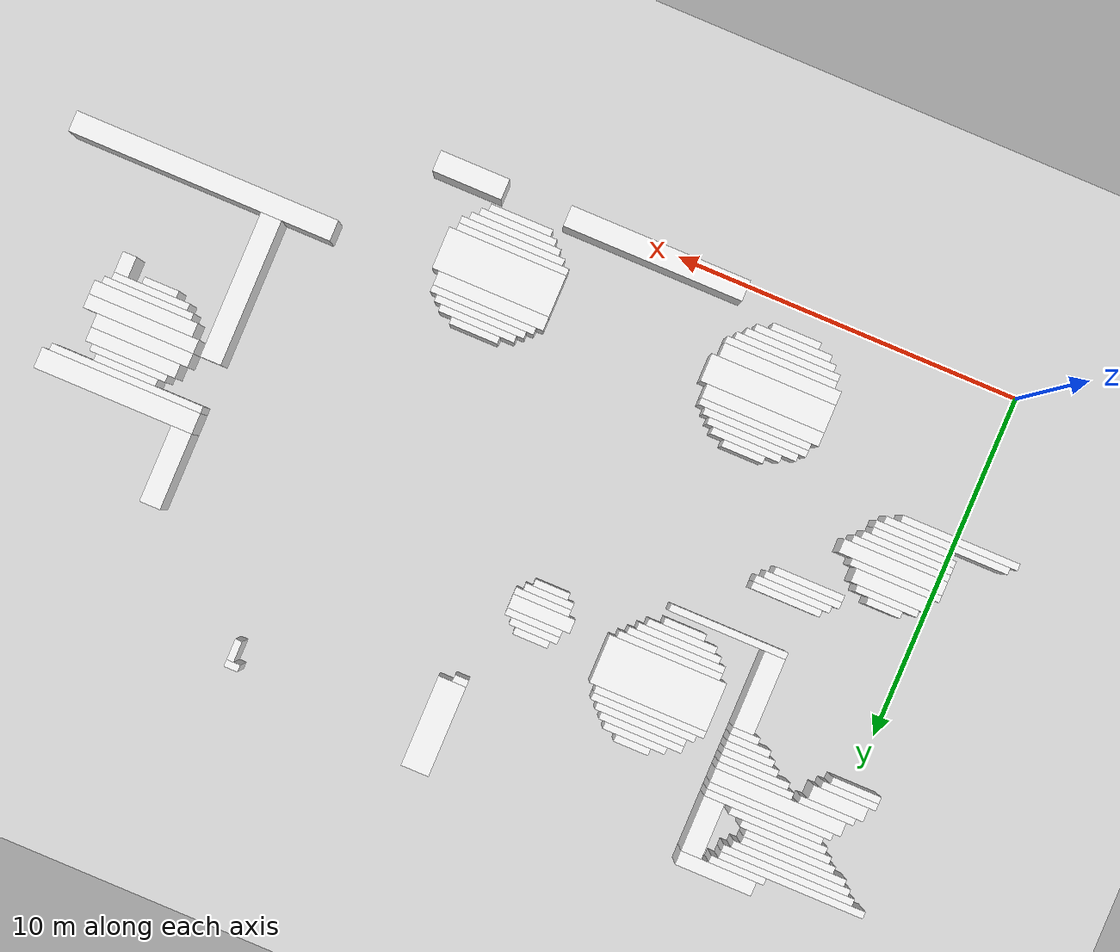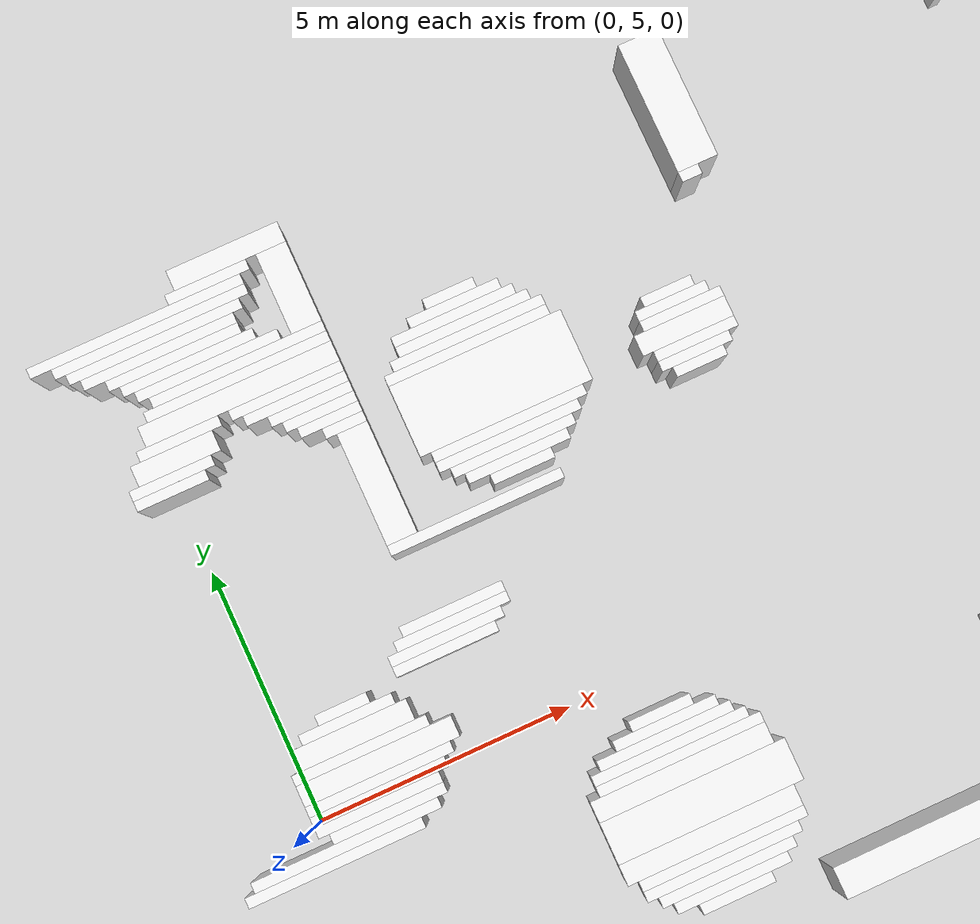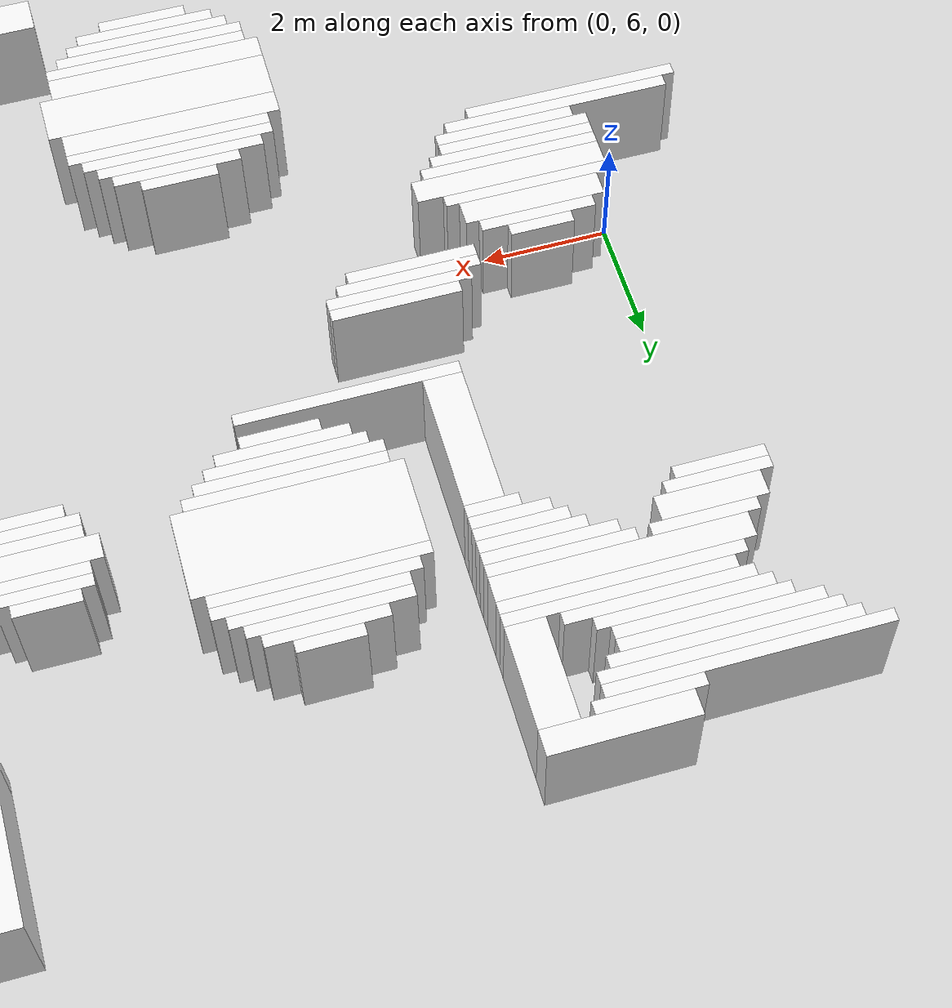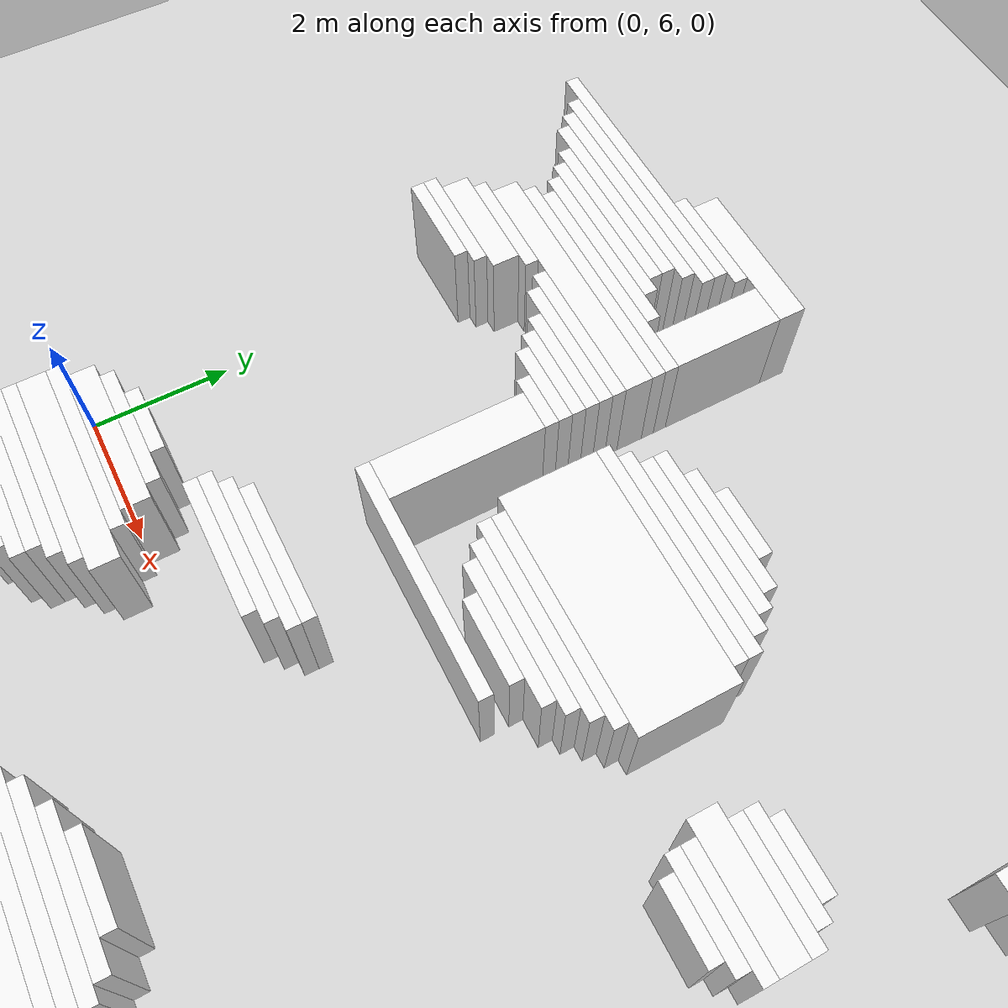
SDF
<sdf version="1.7">
 <world name="default">
  <model name="ground_plane">
   <static>1</static>
   <link name="link">
    <collision name="collision">
     <geometry><plane><normal>0 0 1</normal><size>120 120</size></plane></geometry>
    </collision>
    <visual name="visual">
     <geometry><plane><normal>0 0 1</normal><size>120 120</size></plane></geometry>
     <material>
      <script><uri>file://media/materials/scripts/gazebo.material</uri><name>Gazebo/Grey</name></script>
     </material>
    </visual>
   </link>
  </model>
  <model name="random_complex_01_model">
   <static>1</static>
   <link name="obs_1184">
    <pose>2.7000 15.0000 0.8000 0 0 0</pose>
    <collision name="obs_1184_col"><geometry><box><size>2.2000 0.4000 1.6000</size></box></geometry></collision>
    <visual name="obs_1184_vis">
     <geometry><box><size>2.2000 0.4000 1.6000</size></box></geometry>
     <material>
      <script><uri>file://media/materials/scripts/gazebo.material</uri><name>Gazebo/White</name></script>
     </material>
    </visual>
   </link>
   <link name="obs_1188">
    <pose>16.8000 14.9000 0.8000 0 0 0</pose>
    <collision name="obs_1188_col"><geometry><box><size>0.4000 0.2000 1.6000</size></box></geometry></collision>
    <visual name="obs_1188_vis">
     <geometry><box><size>0.4000 0.2000 1.6000</size></box></geometry>
     <material>
      <script><uri>file://media/materials/scripts/gazebo.material</uri><name>Gazebo/White</name></script>
     </material>
    </visual>
   </link>
   <link name="obs_1195">
    <pose>2.2000 14.7000 0.8000 0 0 0</pose>
    <collision name="obs_1195_col"><geometry><box><size>1.6000 0.2000 1.6000</size></box></geometry></collision>
    <visual name="obs_1195_vis">
     <geometry><box><size>1.6000 0.2000 1.6000</size></box></geometry>
     <material>
      <script><uri>file://media/materials/scripts/gazebo.material</uri><name>Gazebo/White</name></script>
     </material>
    </visual>
   </link>
   <link name="obs_1202">
    <pose>0.7000 14.5000 0.8000 0 0 0</pose>
    <collision name="obs_1202_col"><geometry><box><size>4.2000 0.2000 1.6000</size></box></geometry></collision>
    <visual name="obs_1202_vis">
     <geometry><box><size>4.2000 0.2000 1.6000</size></box></geometry>
     <material>
      <script><uri>file://media/materials/scripts/gazebo.material</uri><name>Gazebo/White</name></script>
     </material>
    </visual>
   </link>
   <link name="obs_1206">
    <pose>16.9000 14.5000 0.8000 0 0 0</pose>
    <collision name="obs_1206_col"><geometry><box><size>0.2000 0.6000 1.6000</size></box></geometry></collision>
    <visual name="obs_1206_vis">
     <geometry><box><size>0.2000 0.6000 1.6000</size></box></geometry>
     <material>
      <script><uri>file://media/materials/scripts/gazebo.material</uri><name>Gazebo/White</name></script>
     </material>
    </visual>
   </link>
   <link name="obs_1209">
    <pose>0.9000 14.3000 0.8000 0 0 0</pose>
    <collision name="obs_1209_col"><geometry><box><size>3.8000 0.2000 1.6000</size></box></geometry></collision>
    <visual name="obs_1209_vis">
     <geometry><box><size>3.8000 0.2000 1.6000</size></box></geometry>
     <material>
      <script><uri>file://media/materials/scripts/gazebo.material</uri><name>Gazebo/White</name></script>
     </material>
    </visual>
   </link>
   <link name="obs_1217">
    <pose>0.9000 14.1000 0.8000 0 0 0</pose>
    <collision name="obs_1217_col"><geometry><box><size>3.4000 0.2000 1.6000</size></box></geometry></collision>
    <visual name="obs_1217_vis">
     <geometry><box><size>3.4000 0.2000 1.6000</size></box></geometry>
     <material>
      <script><uri>file://media/materials/scripts/gazebo.material</uri><name>Gazebo/White</name></script>
     </material>
    </visual>
   </link>
   <link name="obs_1223">
    <pose>0.9000 13.9000 0.8000 0 0 0</pose>
    <collision name="obs_1223_col"><geometry><box><size>3.0000 0.2000 1.6000</size></box></geometry></collision>
    <visual name="obs_1223_vis">
     <geometry><box><size>3.0000 0.2000 1.6000</size></box></geometry>
     <material>
      <script><uri>file://media/materials/scripts/gazebo.material</uri><name>Gazebo/White</name></script>
     </material>
    </visual>
   </link>
   <link name="obs_1230">
    <pose>1.1000 13.7000 0.8000 0 0 0</pose>
    <collision name="obs_1230_col"><geometry><box><size>2.6000 0.2000 1.6000</size></box></geometry></collision>
    <visual name="obs_1230_vis">
     <geometry><box><size>2.6000 0.2000 1.6000</size></box></geometry>
     <material>
      <script><uri>file://media/materials/scripts/gazebo.material</uri><name>Gazebo/White</name></script>
     </material>
    </visual>
   </link>
   <link name="obs_1240">
    <pose>1.3000 13.5000 0.8000 0 0 0</pose>
    <collision name="obs_1240_col"><geometry><box><size>2.6000 0.2000 1.6000</size></box></geometry></collision>
    <visual name="obs_1240_vis">
     <geometry><box><size>2.6000 0.2000 1.6000</size></box></geometry>
     <material>
      <script><uri>file://media/materials/scripts/gazebo.material</uri><name>Gazebo/White</name></script>
     </material>
    </visual>
   </link>
   <link name="obs_1244">
    <pose>3.5000 14.0000 0.8000 0 0 0</pose>
    <collision name="obs_1244_col"><geometry><box><size>0.6000 1.6000 1.6000</size></box></geometry></collision>
    <visual name="obs_1244_vis">
     <geometry><box><size>0.6000 1.6000 1.6000</size></box></geometry>
     <material>
      <script><uri>file://media/materials/scripts/gazebo.material</uri><name>Gazebo/White</name></script>
     </material>
    </visual>
   </link>
   <link name="obs_1252">
    <pose>1.6000 13.3000 0.8000 0 0 0</pose>
    <collision name="obs_1252_col"><geometry><box><size>2.8000 0.2000 1.6000</size></box></geometry></collision>
    <visual name="obs_1252_vis">
     <geometry><box><size>2.8000 0.2000 1.6000</size></box></geometry>
     <material>
      <script><uri>file://media/materials/scripts/gazebo.material</uri><name>Gazebo/White</name></script>
     </material>
    </visual>
   </link>
   <link name="obs_1256">
    <pose>11.2000 14.3000 0.8000 0 0 0</pose>
    <collision name="obs_1256_col"><geometry><box><size>0.8000 2.6000 1.6000</size></box></geometry></collision>
    <visual name="obs_1256_vis">
     <geometry><box><size>0.8000 2.6000 1.6000</size></box></geometry>
     <material>
      <script><uri>file://media/materials/scripts/gazebo.material</uri><name>Gazebo/White</name></script>
     </material>
    </visual>
   </link>
   <link name="obs_1258">
    <pose>2.1000 13.1000 0.8000 0 0 0</pose>
    <collision name="obs_1258_col"><geometry><box><size>3.4000 0.2000 1.6000</size></box></geometry></collision>
    <visual name="obs_1258_vis">
     <geometry><box><size>3.4000 0.2000 1.6000</size></box></geometry>
     <material>
      <script><uri>file://media/materials/scripts/gazebo.material</uri><name>Gazebo/White</name></script>
     </material>
    </visual>
   </link>
   <link name="obs_1267">
    <pose>2.0000 12.9000 0.8000 0 0 0</pose>
    <collision name="obs_1267_col"><geometry><box><size>3.6000 0.2000 1.6000</size></box></geometry></collision>
    <visual name="obs_1267_vis">
     <geometry><box><size>3.6000 0.2000 1.6000</size></box></geometry>
     <material>
      <script><uri>file://media/materials/scripts/gazebo.material</uri><name>Gazebo/White</name></script>
     </material>
    </visual>
   </link>
   <link name="obs_1268">
    <pose>11.0000 12.9000 0.8000 0 0 0</pose>
    <collision name="obs_1268_col"><geometry><box><size>0.4000 0.2000 1.6000</size></box></geometry></collision>
    <visual name="obs_1268_vis">
     <geometry><box><size>0.4000 0.2000 1.6000</size></box></geometry>
     <material>
      <script><uri>file://media/materials/scripts/gazebo.material</uri><name>Gazebo/White</name></script>
     </material>
    </visual>
   </link>
   <link name="obs_1276">
    <pose>6.1000 12.7000 0.8000 0 0 0</pose>
    <collision name="obs_1276_col"><geometry><box><size>1.0000 0.2000 1.6000</size></box></geometry></collision>
    <visual name="obs_1276_vis">
     <geometry><box><size>1.0000 0.2000 1.6000</size></box></geometry>
     <material>
      <script><uri>file://media/materials/scripts/gazebo.material</uri><name>Gazebo/White</name></script>
     </material>
    </visual>
   </link>
   <link name="obs_1282">
    <pose>1.9000 12.6000 0.8000 0 0 0</pose>
    <collision name="obs_1282_col"><geometry><box><size>3.8000 0.4000 1.6000</size></box></geometry></collision>
    <visual name="obs_1282_vis">
     <geometry><box><size>3.8000 0.4000 1.6000</size></box></geometry>
     <material>
      <script><uri>file://media/materials/scripts/gazebo.material</uri><name>Gazebo/White</name></script>
     </material>
    </visual>
   </link>
   <link name="obs_1287">
    <pose>6.1000 12.5000 0.8000 0 0 0</pose>
    <collision name="obs_1287_col"><geometry><box><size>1.8000 0.2000 1.6000</size></box></geometry></collision>
    <visual name="obs_1287_vis">
     <geometry><box><size>1.8000 0.2000 1.6000</size></box></geometry>
     <material>
      <script><uri>file://media/materials/scripts/gazebo.material</uri><name>Gazebo/White</name></script>
     </material>
    </visual>
   </link>
   <link name="obs_1293">
    <pose>0.6000 12.3000 0.8000 0 0 0</pose>
    <collision name="obs_1293_col"><geometry><box><size>1.6000 0.2000 1.6000</size></box></geometry></collision>
    <visual name="obs_1293_vis">
     <geometry><box><size>1.6000 0.2000 1.6000</size></box></geometry>
     <material>
      <script><uri>file://media/materials/scripts/gazebo.material</uri><name>Gazebo/White</name></script>
     </material>
    </visual>
   </link>
   <link name="obs_1294">
    <pose>2.7000 12.3000 0.8000 0 0 0</pose>
    <collision name="obs_1294_col"><geometry><box><size>2.2000 0.2000 1.6000</size></box></geometry></collision>
    <visual name="obs_1294_vis">
     <geometry><box><size>2.2000 0.2000 1.6000</size></box></geometry>
     <material>
      <script><uri>file://media/materials/scripts/gazebo.material</uri><name>Gazebo/White</name></script>
     </material>
    </visual>
   </link>
   <link name="obs_1295">
    <pose>6.0000 12.3000 0.8000 0 0 0</pose>
    <collision name="obs_1295_col"><geometry><box><size>2.4000 0.2000 1.6000</size></box></geometry></collision>
    <visual name="obs_1295_vis">
     <geometry><box><size>2.4000 0.2000 1.6000</size></box></geometry>
     <material>
      <script><uri>file://media/materials/scripts/gazebo.material</uri><name>Gazebo/White</name></script>
     </material>
    </visual>
   </link>
   <link name="obs_1303">
    <pose>2.8000 12.1000 0.8000 0 0 0</pose>
    <collision name="obs_1303_col"><geometry><box><size>2.0000 0.2000 1.6000</size></box></geometry></collision>
    <visual name="obs_1303_vis">
     <geometry><box><size>2.0000 0.2000 1.6000</size></box></geometry>
     <material>
      <script><uri>file://media/materials/scripts/gazebo.material</uri><name>Gazebo/White</name></script>
     </material>
    </visual>
   </link>
   <link name="obs_1304">
    <pose>6.1000 12.1000 0.8000 0 0 0</pose>
    <collision name="obs_1304_col"><geometry><box><size>2.6000 0.2000 1.6000</size></box></geometry></collision>
    <visual name="obs_1304_vis">
     <geometry><box><size>2.6000 0.2000 1.6000</size></box></geometry>
     <material>
      <script><uri>file://media/materials/scripts/gazebo.material</uri><name>Gazebo/White</name></script>
     </material>
    </visual>
   </link>
   <link name="obs_1309">
    <pose>0.4000 12.0000 0.8000 0 0 0</pose>
    <collision name="obs_1309_col"><geometry><box><size>1.6000 0.4000 1.6000</size></box></geometry></collision>
    <visual name="obs_1309_vis">
     <geometry><box><size>1.6000 0.4000 1.6000</size></box></geometry>
     <material>
      <script><uri>file://media/materials/scripts/gazebo.material</uri><name>Gazebo/White</name></script>
     </material>
    </visual>
   </link>
   <link name="obs_1312">
    <pose>3.0000 11.9000 0.8000 0 0 0</pose>
    <collision name="obs_1312_col"><geometry><box><size>1.6000 0.2000 1.6000</size></box></geometry></collision>
    <visual name="obs_1312_vis">
     <geometry><box><size>1.6000 0.2000 1.6000</size></box></geometry>
     <material>
      <script><uri>file://media/materials/scripts/gazebo.material</uri><name>Gazebo/White</name></script>
     </material>
    </visual>
   </link>
   <link name="obs_1313">
    <pose>6.1000 11.9000 0.8000 0 0 0</pose>
    <collision name="obs_1313_col"><geometry><box><size>3.0000 0.2000 1.6000</size></box></geometry></collision>
    <visual name="obs_1313_vis">
     <geometry><box><size>3.0000 0.2000 1.6000</size></box></geometry>
     <material>
      <script><uri>file://media/materials/scripts/gazebo.material</uri><name>Gazebo/White</name></script>
     </material>
    </visual>
   </link>
   <link name="obs_1318">
    <pose>0.2000 11.7000 0.8000 0 0 0</pose>
    <collision name="obs_1318_col"><geometry><box><size>1.6000 0.2000 1.6000</size></box></geometry></collision>
    <visual name="obs_1318_vis">
     <geometry><box><size>1.6000 0.2000 1.6000</size></box></geometry>
     <material>
      <script><uri>file://media/materials/scripts/gazebo.material</uri><name>Gazebo/White</name></script>
     </material>
    </visual>
   </link>
   <link name="obs_1319">
    <pose>3.1000 11.7000 0.8000 0 0 0</pose>
    <collision name="obs_1319_col"><geometry><box><size>1.4000 0.2000 1.6000</size></box></geometry></collision>
    <visual name="obs_1319_vis">
     <geometry><box><size>1.4000 0.2000 1.6000</size></box></geometry>
     <material>
      <script><uri>file://media/materials/scripts/gazebo.material</uri><name>Gazebo/White</name></script>
     </material>
    </visual>
   </link>
   <link name="obs_1320">
    <pose>6.0000 11.7000 0.8000 0 0 0</pose>
    <collision name="obs_1320_col"><geometry><box><size>3.2000 0.2000 1.6000</size></box></geometry></collision>
    <visual name="obs_1320_vis">
     <geometry><box><size>3.2000 0.2000 1.6000</size></box></geometry>
     <material>
      <script><uri>file://media/materials/scripts/gazebo.material</uri><name>Gazebo/White</name></script>
     </material>
    </visual>
   </link>
   <link name="obs_1324">
    <pose>0.1000 11.5000 0.8000 0 0 0</pose>
    <collision name="obs_1324_col"><geometry><box><size>1.4000 0.2000 1.6000</size></box></geometry></collision>
    <visual name="obs_1324_vis">
     <geometry><box><size>1.4000 0.2000 1.6000</size></box></geometry>
     <material>
      <script><uri>file://media/materials/scripts/gazebo.material</uri><name>Gazebo/White</name></script>
     </material>
    </visual>
   </link>
   <link name="obs_1325">
    <pose>3.2000 11.5000 0.8000 0 0 0</pose>
    <collision name="obs_1325_col"><geometry><box><size>1.2000 0.2000 1.6000</size></box></geometry></collision>
    <visual name="obs_1325_vis">
     <geometry><box><size>1.2000 0.2000 1.6000</size></box></geometry>
     <material>
      <script><uri>file://media/materials/scripts/gazebo.material</uri><name>Gazebo/White</name></script>
     </material>
    </visual>
   </link>
   <link name="obs_1329">
    <pose>3.4000 11.3000 0.8000 0 0 0</pose>
    <collision name="obs_1329_col"><geometry><box><size>0.8000 0.2000 1.6000</size></box></geometry></collision>
    <visual name="obs_1329_vis">
     <geometry><box><size>0.8000 0.2000 1.6000</size></box></geometry>
     <material>
      <script><uri>file://media/materials/scripts/gazebo.material</uri><name>Gazebo/White</name></script>
     </material>
    </visual>
   </link>
   <link name="obs_1337">
    <pose>9.7000 11.1000 0.8000 0 0 0</pose>
    <collision name="obs_1337_col"><geometry><box><size>1.0000 0.2000 1.6000</size></box></geometry></collision>
    <visual name="obs_1337_vis">
     <geometry><box><size>1.0000 0.2000 1.6000</size></box></geometry>
     <material>
      <script><uri>file://media/materials/scripts/gazebo.material</uri><name>Gazebo/White</name></script>
     </material>
    </visual>
   </link>
   <link name="obs_1343">
    <pose>9.7000 10.9000 0.8000 0 0 0</pose>
    <collision name="obs_1343_col"><geometry><box><size>1.4000 0.2000 1.6000</size></box></geometry></collision>
    <visual name="obs_1343_vis">
     <geometry><box><size>1.4000 0.2000 1.6000</size></box></geometry>
     <material>
      <script><uri>file://media/materials/scripts/gazebo.material</uri><name>Gazebo/White</name></script>
     </material>
    </visual>
   </link>
   <link name="obs_1349">
    <pose>9.8000 10.7000 0.8000 0 0 0</pose>
    <collision name="obs_1349_col"><geometry><box><size>1.6000 0.2000 1.6000</size></box></geometry></collision>
    <visual name="obs_1349_vis">
     <geometry><box><size>1.6000 0.2000 1.6000</size></box></geometry>
     <material>
      <script><uri>file://media/materials/scripts/gazebo.material</uri><name>Gazebo/White</name></script>
     </material>
    </visual>
   </link>
   <link name="obs_1356">
    <pose>6.1000 10.9000 0.8000 0 0 0</pose>
    <collision name="obs_1356_col"><geometry><box><size>3.4000 1.4000 1.6000</size></box></geometry></collision>
    <visual name="obs_1356_vis">
     <geometry><box><size>3.4000 1.4000 1.6000</size></box></geometry>
     <material>
      <script><uri>file://media/materials/scripts/gazebo.material</uri><name>Gazebo/White</name></script>
     </material>
    </visual>
   </link>
   <link name="obs_1358">
    <pose>9.7000 10.4000 0.8000 0 0 0</pose>
    <collision name="obs_1358_col"><geometry><box><size>1.8000 0.4000 1.6000</size></box></geometry></collision>
    <visual name="obs_1358_vis">
     <geometry><box><size>1.8000 0.4000 1.6000</size></box></geometry>
     <material>
      <script><uri>file://media/materials/scripts/gazebo.material</uri><name>Gazebo/White</name></script>
     </material>
    </visual>
   </link>
   <link name="obs_1368">
    <pose>6.1000 10.1000 0.8000 0 0 0</pose>
    <collision name="obs_1368_col"><geometry><box><size>3.0000 0.2000 1.6000</size></box></geometry></collision>
    <visual name="obs_1368_vis">
     <geometry><box><size>3.0000 0.2000 1.6000</size></box></geometry>
     <material>
      <script><uri>file://media/materials/scripts/gazebo.material</uri><name>Gazebo/White</name></script>
     </material>
    </visual>
   </link>
   <link name="obs_1369">
    <pose>9.8000 10.1000 0.8000 0 0 0</pose>
    <collision name="obs_1369_col"><geometry><box><size>1.6000 0.2000 1.6000</size></box></geometry></collision>
    <visual name="obs_1369_vis">
     <geometry><box><size>1.6000 0.2000 1.6000</size></box></geometry>
     <material>
      <script><uri>file://media/materials/scripts/gazebo.material</uri><name>Gazebo/White</name></script>
     </material>
    </visual>
   </link>
   <link name="obs_1376">
    <pose>6.0000 9.9000 0.8000 0 0 0</pose>
    <collision name="obs_1376_col"><geometry><box><size>2.8000 0.2000 1.6000</size></box></geometry></collision>
    <visual name="obs_1376_vis">
     <geometry><box><size>2.8000 0.2000 1.6000</size></box></geometry>
     <material>
      <script><uri>file://media/materials/scripts/gazebo.material</uri><name>Gazebo/White</name></script>
     </material>
    </visual>
   </link>
   <link name="obs_1377">
    <pose>9.7000 9.9000 0.8000 0 0 0</pose>
    <collision name="obs_1377_col"><geometry><box><size>1.4000 0.2000 1.6000</size></box></geometry></collision>
    <visual name="obs_1377_vis">
     <geometry><box><size>1.4000 0.2000 1.6000</size></box></geometry>
     <material>
      <script><uri>file://media/materials/scripts/gazebo.material</uri><name>Gazebo/White</name></script>
     </material>
    </visual>
   </link>
   <link name="obs_1378">
    <pose>20.5000 10.7000 0.8000 0 0 0</pose>
    <collision name="obs_1378_col"><geometry><box><size>0.6000 2.2000 1.6000</size></box></geometry></collision>
    <visual name="obs_1378_vis">
     <geometry><box><size>0.6000 2.2000 1.6000</size></box></geometry>
     <material>
      <script><uri>file://media/materials/scripts/gazebo.material</uri><name>Gazebo/White</name></script>
     </material>
    </visual>
   </link>
   <link name="obs_1383">
    <pose>6.0000 9.7000 0.8000 0 0 0</pose>
    <collision name="obs_1383_col"><geometry><box><size>2.4000 0.2000 1.6000</size></box></geometry></collision>
    <visual name="obs_1383_vis">
     <geometry><box><size>2.4000 0.2000 1.6000</size></box></geometry>
     <material>
      <script><uri>file://media/materials/scripts/gazebo.material</uri><name>Gazebo/White</name></script>
     </material>
    </visual>
   </link>
   <link name="obs_1384">
    <pose>9.7000 9.7000 0.8000 0 0 0</pose>
    <collision name="obs_1384_col"><geometry><box><size>1.0000 0.2000 1.6000</size></box></geometry></collision>
    <visual name="obs_1384_vis">
     <geometry><box><size>1.0000 0.2000 1.6000</size></box></geometry>
     <material>
      <script><uri>file://media/materials/scripts/gazebo.material</uri><name>Gazebo/White</name></script>
     </material>
    </visual>
   </link>
   <link name="obs_1393">
    <pose>6.0000 9.5000 0.8000 0 0 0</pose>
    <collision name="obs_1393_col"><geometry><box><size>2.0000 0.2000 1.6000</size></box></geometry></collision>
    <visual name="obs_1393_vis">
     <geometry><box><size>2.0000 0.2000 1.6000</size></box></geometry>
     <material>
      <script><uri>file://media/materials/scripts/gazebo.material</uri><name>Gazebo/White</name></script>
     </material>
    </visual>
   </link>
   <link name="obs_1398">
    <pose>6.0000 9.3000 0.8000 0 0 0</pose>
    <collision name="obs_1398_col"><geometry><box><size>1.2000 0.2000 1.6000</size></box></geometry></collision>
    <visual name="obs_1398_vis">
     <geometry><box><size>1.2000 0.2000 1.6000</size></box></geometry>
     <material>
      <script><uri>file://media/materials/scripts/gazebo.material</uri><name>Gazebo/White</name></script>
     </material>
    </visual>
   </link>
   <link name="obs_1400">
    <pose>3.5000 10.1000 0.8000 0 0 0</pose>
    <collision name="obs_1400_col"><geometry><box><size>0.6000 2.2000 1.6000</size></box></geometry></collision>
    <visual name="obs_1400_vis">
     <geometry><box><size>0.6000 2.2000 1.6000</size></box></geometry>
     <material>
      <script><uri>file://media/materials/scripts/gazebo.material</uri><name>Gazebo/White</name></script>
     </material>
    </visual>
   </link>
   <link name="obs_1401">
    <pose>22.5000 9.3000 0.8000 0 0 0</pose>
    <collision name="obs_1401_col"><geometry><box><size>4.6000 0.6000 1.6000</size></box></geometry></collision>
    <visual name="obs_1401_vis">
     <geometry><box><size>4.6000 0.6000 1.6000</size></box></geometry>
     <material>
      <script><uri>file://media/materials/scripts/gazebo.material</uri><name>Gazebo/White</name></script>
     </material>
    </visual>
   </link>
   <link name="obs_1417">
    <pose>4.9000 8.9000 0.8000 0 0 0</pose>
    <collision name="obs_1417_col"><geometry><box><size>3.4000 0.2000 1.6000</size></box></geometry></collision>
    <visual name="obs_1417_vis">
     <geometry><box><size>3.4000 0.2000 1.6000</size></box></geometry>
     <material>
      <script><uri>file://media/materials/scripts/gazebo.material</uri><name>Gazebo/White</name></script>
     </material>
    </visual>
   </link>
   <link name="obs_1418">
    <pose>22.4000 8.9000 0.8000 0 0 0</pose>
    <collision name="obs_1418_col"><geometry><box><size>4.4000 0.2000 1.6000</size></box></geometry></collision>
    <visual name="obs_1418_vis">
     <geometry><box><size>4.4000 0.2000 1.6000</size></box></geometry>
     <material>
      <script><uri>file://media/materials/scripts/gazebo.material</uri><name>Gazebo/White</name></script>
     </material>
    </visual>
   </link>
   <link name="obs_1424">
    <pose>22.5000 8.7000 0.8000 0 0 0</pose>
    <collision name="obs_1424_col"><geometry><box><size>1.8000 0.2000 1.6000</size></box></geometry></collision>
    <visual name="obs_1424_vis">
     <geometry><box><size>1.8000 0.2000 1.6000</size></box></geometry>
     <material>
      <script><uri>file://media/materials/scripts/gazebo.material</uri><name>Gazebo/White</name></script>
     </material>
    </visual>
   </link>
   <link name="obs_1432">
    <pose>22.5000 8.5000 0.8000 0 0 0</pose>
    <collision name="obs_1432_col"><geometry><box><size>2.2000 0.2000 1.6000</size></box></geometry></collision>
    <visual name="obs_1432_vis">
     <geometry><box><size>2.2000 0.2000 1.6000</size></box></geometry>
     <material>
      <script><uri>file://media/materials/scripts/gazebo.material</uri><name>Gazebo/White</name></script>
     </material>
    </visual>
   </link>
   <link name="obs_1444">
    <pose>22.5000 8.2000 0.8000 0 0 0</pose>
    <collision name="obs_1444_col"><geometry><box><size>2.6000 0.4000 1.6000</size></box></geometry></collision>
    <visual name="obs_1444_vis">
     <geometry><box><size>2.6000 0.4000 1.6000</size></box></geometry>
     <material>
      <script><uri>file://media/materials/scripts/gazebo.material</uri><name>Gazebo/White</name></script>
     </material>
    </visual>
   </link>
   <link name="obs_1460">
    <pose>22.4000 7.8000 0.8000 0 0 0</pose>
    <collision name="obs_1460_col"><geometry><box><size>2.8000 0.4000 1.6000</size></box></geometry></collision>
    <visual name="obs_1460_vis">
     <geometry><box><size>2.8000 0.4000 1.6000</size></box></geometry>
     <material>
      <script><uri>file://media/materials/scripts/gazebo.material</uri><name>Gazebo/White</name></script>
     </material>
    </visual>
   </link>
   <link name="obs_1472">
    <pose>3.8000 7.5000 0.8000 0 0 0</pose>
    <collision name="obs_1472_col"><geometry><box><size>2.0000 0.2000 1.6000</size></box></geometry></collision>
    <visual name="obs_1472_vis">
     <geometry><box><size>2.0000 0.2000 1.6000</size></box></geometry>
     <material>
      <script><uri>file://media/materials/scripts/gazebo.material</uri><name>Gazebo/White</name></script>
     </material>
    </visual>
   </link>
   <link name="obs_1477">
    <pose>22.6000 7.4000 0.8000 0 0 0</pose>
    <collision name="obs_1477_col"><geometry><box><size>3.2000 0.4000 1.6000</size></box></geometry></collision>
    <visual name="obs_1477_vis">
     <geometry><box><size>3.2000 0.4000 1.6000</size></box></geometry>
     <material>
      <script><uri>file://media/materials/scripts/gazebo.material</uri><name>Gazebo/White</name></script>
     </material>
    </visual>
   </link>
   <link name="obs_1482">
    <pose>3.7000 7.3000 0.8000 0 0 0</pose>
    <collision name="obs_1482_col"><geometry><box><size>2.2000 0.2000 1.6000</size></box></geometry></collision>
    <visual name="obs_1482_vis">
     <geometry><box><size>2.2000 0.2000 1.6000</size></box></geometry>
     <material>
      <script><uri>file://media/materials/scripts/gazebo.material</uri><name>Gazebo/White</name></script>
     </material>
    </visual>
   </link>
   <link name="obs_1488">
    <pose>3.5000 7.1000 0.8000 0 0 0</pose>
    <collision name="obs_1488_col"><geometry><box><size>2.2000 0.2000 1.6000</size></box></geometry></collision>
    <visual name="obs_1488_vis">
     <geometry><box><size>2.2000 0.2000 1.6000</size></box></geometry>
     <material>
      <script><uri>file://media/materials/scripts/gazebo.material</uri><name>Gazebo/White</name></script>
     </material>
    </visual>
   </link>
   <link name="obs_1492">
    <pose>22.7000 7.0000 0.8000 0 0 0</pose>
    <collision name="obs_1492_col"><geometry><box><size>3.0000 0.4000 1.6000</size></box></geometry></collision>
    <visual name="obs_1492_vis">
     <geometry><box><size>3.0000 0.4000 1.6000</size></box></geometry>
     <material>
      <script><uri>file://media/materials/scripts/gazebo.material</uri><name>Gazebo/White</name></script>
     </material>
    </visual>
   </link>
   <link name="obs_1496">
    <pose>3.4000 6.9000 0.8000 0 0 0</pose>
    <collision name="obs_1496_col"><geometry><box><size>2.0000 0.2000 1.6000</size></box></geometry></collision>
    <visual name="obs_1496_vis">
     <geometry><box><size>2.0000 0.2000 1.6000</size></box></geometry>
     <material>
      <script><uri>file://media/materials/scripts/gazebo.material</uri><name>Gazebo/White</name></script>
     </material>
    </visual>
   </link>
   <link name="obs_1503">
    <pose>1.3000 6.7000 0.8000 0 0 0</pose>
    <collision name="obs_1503_col"><geometry><box><size>1.0000 0.2000 1.6000</size></box></geometry></collision>
    <visual name="obs_1503_vis">
     <geometry><box><size>1.0000 0.2000 1.6000</size></box></geometry>
     <material>
      <script><uri>file://media/materials/scripts/gazebo.material</uri><name>Gazebo/White</name></script>
     </material>
    </visual>
   </link>
   <link name="obs_1504">
    <pose>22.7000 6.7000 0.8000 0 0 0</pose>
    <collision name="obs_1504_col"><geometry><box><size>2.6000 0.2000 1.6000</size></box></geometry></collision>
    <visual name="obs_1504_vis">
     <geometry><box><size>2.6000 0.2000 1.6000</size></box></geometry>
     <material>
      <script><uri>file://media/materials/scripts/gazebo.material</uri><name>Gazebo/White</name></script>
     </material>
    </visual>
   </link>
   <link name="obs_1515">
    <pose>1.3000 6.5000 0.8000 0 0 0</pose>
    <collision name="obs_1515_col"><geometry><box><size>1.8000 0.2000 1.6000</size></box></geometry></collision>
    <visual name="obs_1515_vis">
     <geometry><box><size>1.8000 0.2000 1.6000</size></box></geometry>
     <material>
      <script><uri>file://media/materials/scripts/gazebo.material</uri><name>Gazebo/White</name></script>
     </material>
    </visual>
   </link>
   <link name="obs_1516">
    <pose>22.7000 6.5000 0.8000 0 0 0</pose>
    <collision name="obs_1516_col"><geometry><box><size>2.2000 0.2000 1.6000</size></box></geometry></collision>
    <visual name="obs_1516_vis">
     <geometry><box><size>2.2000 0.2000 1.6000</size></box></geometry>
     <material>
      <script><uri>file://media/materials/scripts/gazebo.material</uri><name>Gazebo/White</name></script>
     </material>
    </visual>
   </link>
   <link name="obs_1523">
    <pose>22.5000 6.3000 0.8000 0 0 0</pose>
    <collision name="obs_1523_col"><geometry><box><size>1.0000 0.2000 1.6000</size></box></geometry></collision>
    <visual name="obs_1523_vis">
     <geometry><box><size>1.0000 0.2000 1.6000</size></box></geometry>
     <material>
      <script><uri>file://media/materials/scripts/gazebo.material</uri><name>Gazebo/White</name></script>
     </material>
    </visual>
   </link>
   <link name="obs_1527">
    <pose>1.3000 6.2000 0.8000 0 0 0</pose>
    <collision name="obs_1527_col"><geometry><box><size>2.2000 0.4000 1.6000</size></box></geometry></collision>
    <visual name="obs_1527_vis">
     <geometry><box><size>2.2000 0.4000 1.6000</size></box></geometry>
     <material>
      <script><uri>file://media/materials/scripts/gazebo.material</uri><name>Gazebo/White</name></script>
     </material>
    </visual>
   </link>
   <link name="obs_1535">
    <pose>23.6000 6.1000 0.8000 0 0 0</pose>
    <collision name="obs_1535_col"><geometry><box><size>0.4000 0.6000 1.6000</size></box></geometry></collision>
    <visual name="obs_1535_vis">
     <geometry><box><size>0.4000 0.6000 1.6000</size></box></geometry>
     <material>
      <script><uri>file://media/materials/scripts/gazebo.material</uri><name>Gazebo/White</name></script>
     </material>
    </visual>
   </link>
   <link name="obs_1540">
    <pose>1.3000 5.9000 0.8000 0 0 0</pose>
    <collision name="obs_1540_col"><geometry><box><size>2.6000 0.2000 1.6000</size></box></geometry></collision>
    <visual name="obs_1540_vis">
     <geometry><box><size>2.6000 0.2000 1.6000</size></box></geometry>
     <material>
      <script><uri>file://media/materials/scripts/gazebo.material</uri><name>Gazebo/White</name></script>
     </material>
    </visual>
   </link>
   <link name="obs_1551">
    <pose>1.5000 5.6000 0.8000 0 0 0</pose>
    <collision name="obs_1551_col"><geometry><box><size>3.0000 0.4000 1.6000</size></box></geometry></collision>
    <visual name="obs_1551_vis">
     <geometry><box><size>3.0000 0.4000 1.6000</size></box></geometry>
     <material>
      <script><uri>file://media/materials/scripts/gazebo.material</uri><name>Gazebo/White</name></script>
     </material>
    </visual>
   </link>
   <link name="obs_1565">
    <pose>1.4000 5.3000 0.8000 0 0 0</pose>
    <collision name="obs_1565_col"><geometry><box><size>2.8000 0.2000 1.6000</size></box></geometry></collision>
    <visual name="obs_1565_vis">
     <geometry><box><size>2.8000 0.2000 1.6000</size></box></geometry>
     <material>
      <script><uri>file://media/materials/scripts/gazebo.material</uri><name>Gazebo/White</name></script>
     </material>
    </visual>
   </link>
   <link name="obs_1576">
    <pose>1.3000 5.1000 0.8000 0 0 0</pose>
    <collision name="obs_1576_col"><geometry><box><size>2.6000 0.2000 1.6000</size></box></geometry></collision>
    <visual name="obs_1576_vis">
     <geometry><box><size>2.6000 0.2000 1.6000</size></box></geometry>
     <material>
      <script><uri>file://media/materials/scripts/gazebo.material</uri><name>Gazebo/White</name></script>
     </material>
    </visual>
   </link>
   <link name="obs_1586">
    <pose>1.2000 4.9000 0.8000 0 0 0</pose>
    <collision name="obs_1586_col"><geometry><box><size>2.4000 0.2000 1.6000</size></box></geometry></collision>
    <visual name="obs_1586_vis">
     <geometry><box><size>2.4000 0.2000 1.6000</size></box></geometry>
     <material>
      <script><uri>file://media/materials/scripts/gazebo.material</uri><name>Gazebo/White</name></script>
     </material>
    </visual>
   </link>
   <link name="obs_1596">
    <pose>1.3000 4.7000 0.8000 0 0 0</pose>
    <collision name="obs_1596_col"><geometry><box><size>2.2000 0.2000 1.6000</size></box></geometry></collision>
    <visual name="obs_1596_vis">
     <geometry><box><size>2.2000 0.2000 1.6000</size></box></geometry>
     <material>
      <script><uri>file://media/materials/scripts/gazebo.material</uri><name>Gazebo/White</name></script>
     </material>
    </visual>
   </link>
   <link name="obs_1606">
    <pose>0.4000 4.5000 0.8000 0 0 0</pose>
    <collision name="obs_1606_col"><geometry><box><size>3.6000 0.2000 1.6000</size></box></geometry></collision>
    <visual name="obs_1606_vis">
     <geometry><box><size>3.6000 0.2000 1.6000</size></box></geometry>
     <material>
      <script><uri>file://media/materials/scripts/gazebo.material</uri><name>Gazebo/White</name></script>
     </material>
    </visual>
   </link>
   <link name="obs_1616">
    <pose>0.1000 4.3000 0.8000 0 0 0</pose>
    <collision name="obs_1616_col"><geometry><box><size>3.4000 0.2000 1.6000</size></box></geometry></collision>
    <visual name="obs_1616_vis">
     <geometry><box><size>3.4000 0.2000 1.6000</size></box></geometry>
     <material>
      <script><uri>file://media/materials/scripts/gazebo.material</uri><name>Gazebo/White</name></script>
     </material>
    </visual>
   </link>
   <link name="obs_1617">
    <pose>6.4000 4.3000 0.8000 0 0 0</pose>
    <collision name="obs_1617_col"><geometry><box><size>1.2000 0.2000 1.6000</size></box></geometry></collision>
    <visual name="obs_1617_vis">
     <geometry><box><size>1.2000 0.2000 1.6000</size></box></geometry>
     <material>
      <script><uri>file://media/materials/scripts/gazebo.material</uri><name>Gazebo/White</name></script>
     </material>
    </visual>
   </link>
   <link name="obs_1626">
    <pose>6.4000 4.1000 0.8000 0 0 0</pose>
    <collision name="obs_1626_col"><geometry><box><size>2.0000 0.2000 1.6000</size></box></geometry></collision>
    <visual name="obs_1626_vis">
     <geometry><box><size>2.0000 0.2000 1.6000</size></box></geometry>
     <material>
      <script><uri>file://media/materials/scripts/gazebo.material</uri><name>Gazebo/White</name></script>
     </material>
    </visual>
   </link>
   <link name="obs_1627">
    <pose>14.3000 4.1000 0.8000 0 0 0</pose>
    <collision name="obs_1627_col"><geometry><box><size>1.4000 0.2000 1.6000</size></box></geometry></collision>
    <visual name="obs_1627_vis">
     <geometry><box><size>1.4000 0.2000 1.6000</size></box></geometry>
     <material>
      <script><uri>file://media/materials/scripts/gazebo.material</uri><name>Gazebo/White</name></script>
     </material>
    </visual>
   </link>
   <link name="obs_1641">
    <pose>6.3000 3.9000 0.8000 0 0 0</pose>
    <collision name="obs_1641_col"><geometry><box><size>2.6000 0.2000 1.6000</size></box></geometry></collision>
    <visual name="obs_1641_vis">
     <geometry><box><size>2.6000 0.2000 1.6000</size></box></geometry>
     <material>
      <script><uri>file://media/materials/scripts/gazebo.material</uri><name>Gazebo/White</name></script>
     </material>
    </visual>
   </link>
   <link name="obs_1642">
    <pose>14.3000 3.9000 0.8000 0 0 0</pose>
    <collision name="obs_1642_col"><geometry><box><size>2.2000 0.2000 1.6000</size></box></geometry></collision>
    <visual name="obs_1642_vis">
     <geometry><box><size>2.2000 0.2000 1.6000</size></box></geometry>
     <material>
      <script><uri>file://media/materials/scripts/gazebo.material</uri><name>Gazebo/White</name></script>
     </material>
    </visual>
   </link>
   <link name="obs_1655">
    <pose>6.3000 3.7000 0.8000 0 0 0</pose>
    <collision name="obs_1655_col"><geometry><box><size>3.0000 0.2000 1.6000</size></box></geometry></collision>
    <visual name="obs_1655_vis">
     <geometry><box><size>3.0000 0.2000 1.6000</size></box></geometry>
     <material>
      <script><uri>file://media/materials/scripts/gazebo.material</uri><name>Gazebo/White</name></script>
     </material>
    </visual>
   </link>
   <link name="obs_1656">
    <pose>14.3000 3.7000 0.8000 0 0 0</pose>
    <collision name="obs_1656_col"><geometry><box><size>2.6000 0.2000 1.6000</size></box></geometry></collision>
    <visual name="obs_1656_vis">
     <geometry><box><size>2.6000 0.2000 1.6000</size></box></geometry>
     <material>
      <script><uri>file://media/materials/scripts/gazebo.material</uri><name>Gazebo/White</name></script>
     </material>
    </visual>
   </link>
   <link name="obs_1660">
    <pose>20.5000 5.5000 0.8000 0 0 0</pose>
    <collision name="obs_1660_col"><geometry><box><size>0.6000 4.2000 1.6000</size></box></geometry></collision>
    <visual name="obs_1660_vis">
     <geometry><box><size>0.6000 4.2000 1.6000</size></box></geometry>
     <material>
      <script><uri>file://media/materials/scripts/gazebo.material</uri><name>Gazebo/White</name></script>
     </material>
    </visual>
   </link>
   <link name="obs_1671">
    <pose>6.4000 3.5000 0.8000 0 0 0</pose>
    <collision name="obs_1671_col"><geometry><box><size>3.2000 0.2000 1.6000</size></box></geometry></collision>
    <visual name="obs_1671_vis">
     <geometry><box><size>3.2000 0.2000 1.6000</size></box></geometry>
     <material>
      <script><uri>file://media/materials/scripts/gazebo.material</uri><name>Gazebo/White</name></script>
     </material>
    </visual>
   </link>
   <link name="obs_1672">
    <pose>14.3000 3.5000 0.8000 0 0 0</pose>
    <collision name="obs_1672_col"><geometry><box><size>3.0000 0.2000 1.6000</size></box></geometry></collision>
    <visual name="obs_1672_vis">
     <geometry><box><size>3.0000 0.2000 1.6000</size></box></geometry>
     <material>
      <script><uri>file://media/materials/scripts/gazebo.material</uri><name>Gazebo/White</name></script>
     </material>
    </visual>
   </link>
   <link name="obs_1689">
    <pose>6.3000 3.2000 0.8000 0 0 0</pose>
    <collision name="obs_1689_col"><geometry><box><size>3.4000 0.4000 1.6000</size></box></geometry></collision>
    <visual name="obs_1689_vis">
     <geometry><box><size>3.4000 0.4000 1.6000</size></box></geometry>
     <material>
      <script><uri>file://media/materials/scripts/gazebo.material</uri><name>Gazebo/White</name></script>
     </material>
    </visual>
   </link>
   <link name="obs_1690">
    <pose>14.2000 3.2000 0.8000 0 0 0</pose>
    <collision name="obs_1690_col"><geometry><box><size>3.2000 0.4000 1.6000</size></box></geometry></collision>
    <visual name="obs_1690_vis">
     <geometry><box><size>3.2000 0.4000 1.6000</size></box></geometry>
     <material>
      <script><uri>file://media/materials/scripts/gazebo.material</uri><name>Gazebo/White</name></script>
     </material>
    </visual>
   </link>
   <link name="obs_1700">
    <pose>22.6000 3.1000 0.8000 0 0 0</pose>
    <collision name="obs_1700_col"><geometry><box><size>7.6000 0.6000 1.6000</size></box></geometry></collision>
    <visual name="obs_1700_vis">
     <geometry><box><size>7.6000 0.6000 1.6000</size></box></geometry>
     <material>
      <script><uri>file://media/materials/scripts/gazebo.material</uri><name>Gazebo/White</name></script>
     </material>
    </visual>
   </link>
   <link name="obs_1732">
    <pose>6.4000 2.6000 0.8000 0 0 0</pose>
    <collision name="obs_1732_col"><geometry><box><size>3.6000 0.8000 1.6000</size></box></geometry></collision>
    <visual name="obs_1732_vis">
     <geometry><box><size>3.6000 0.8000 1.6000</size></box></geometry>
     <material>
      <script><uri>file://media/materials/scripts/gazebo.material</uri><name>Gazebo/White</name></script>
     </material>
    </visual>
   </link>
   <link name="obs_1749">
    <pose>14.3000 2.4000 0.8000 0 0 0</pose>
    <collision name="obs_1749_col"><geometry><box><size>3.4000 1.2000 1.6000</size></box></geometry></collision>
    <visual name="obs_1749_vis">
     <geometry><box><size>3.4000 1.2000 1.6000</size></box></geometry>
     <material>
      <script><uri>file://media/materials/scripts/gazebo.material</uri><name>Gazebo/White</name></script>
     </material>
    </visual>
   </link>
   <link name="obs_1752">
    <pose>6.3000 2.0000 0.8000 0 0 0</pose>
    <collision name="obs_1752_col"><geometry><box><size>3.4000 0.4000 1.6000</size></box></geometry></collision>
    <visual name="obs_1752_vis">
     <geometry><box><size>3.4000 0.4000 1.6000</size></box></geometry>
     <material>
      <script><uri>file://media/materials/scripts/gazebo.material</uri><name>Gazebo/White</name></script>
     </material>
    </visual>
   </link>
   <link name="obs_1768">
    <pose>6.4000 1.7000 0.8000 0 0 0</pose>
    <collision name="obs_1768_col"><geometry><box><size>3.2000 0.2000 1.6000</size></box></geometry></collision>
    <visual name="obs_1768_vis">
     <geometry><box><size>3.2000 0.2000 1.6000</size></box></geometry>
     <material>
      <script><uri>file://media/materials/scripts/gazebo.material</uri><name>Gazebo/White</name></script>
     </material>
    </visual>
   </link>
   <link name="obs_1769">
    <pose>14.2000 1.7000 0.8000 0 0 0</pose>
    <collision name="obs_1769_col"><geometry><box><size>3.2000 0.2000 1.6000</size></box></geometry></collision>
    <visual name="obs_1769_vis">
     <geometry><box><size>3.2000 0.2000 1.6000</size></box></geometry>
     <material>
      <script><uri>file://media/materials/scripts/gazebo.material</uri><name>Gazebo/White</name></script>
     </material>
    </visual>
   </link>
   <link name="obs_1779">
    <pose>6.3000 1.5000 0.8000 0 0 0</pose>
    <collision name="obs_1779_col"><geometry><box><size>3.0000 0.2000 1.6000</size></box></geometry></collision>
    <visual name="obs_1779_vis">
     <geometry><box><size>3.0000 0.2000 1.6000</size></box></geometry>
     <material>
      <script><uri>file://media/materials/scripts/gazebo.material</uri><name>Gazebo/White</name></script>
     </material>
    </visual>
   </link>
   <link name="obs_1780">
    <pose>14.3000 1.5000 0.8000 0 0 0</pose>
    <collision name="obs_1780_col"><geometry><box><size>3.0000 0.2000 1.6000</size></box></geometry></collision>
    <visual name="obs_1780_vis">
     <geometry><box><size>3.0000 0.2000 1.6000</size></box></geometry>
     <material>
      <script><uri>file://media/materials/scripts/gazebo.material</uri><name>Gazebo/White</name></script>
     </material>
    </visual>
   </link>
   <link name="obs_1788">
    <pose>6.3000 1.3000 0.8000 0 0 0</pose>
    <collision name="obs_1788_col"><geometry><box><size>2.6000 0.2000 1.6000</size></box></geometry></collision>
    <visual name="obs_1788_vis">
     <geometry><box><size>2.6000 0.2000 1.6000</size></box></geometry>
     <material>
      <script><uri>file://media/materials/scripts/gazebo.material</uri><name>Gazebo/White</name></script>
     </material>
    </visual>
   </link>
   <link name="obs_1789">
    <pose>14.3000 1.3000 0.8000 0 0 0</pose>
    <collision name="obs_1789_col"><geometry><box><size>2.6000 0.2000 1.6000</size></box></geometry></collision>
    <visual name="obs_1789_vis">
     <geometry><box><size>2.6000 0.2000 1.6000</size></box></geometry>
     <material>
      <script><uri>file://media/materials/scripts/gazebo.material</uri><name>Gazebo/White</name></script>
     </material>
    </visual>
   </link>
   <link name="obs_1797">
    <pose>6.3000 1.1000 0.8000 0 0 0</pose>
    <collision name="obs_1797_col"><geometry><box><size>2.2000 0.2000 1.6000</size></box></geometry></collision>
    <visual name="obs_1797_vis">
     <geometry><box><size>2.2000 0.2000 1.6000</size></box></geometry>
     <material>
      <script><uri>file://media/materials/scripts/gazebo.material</uri><name>Gazebo/White</name></script>
     </material>
    </visual>
   </link>
   <link name="obs_1798">
    <pose>14.3000 1.1000 0.8000 0 0 0</pose>
    <collision name="obs_1798_col"><geometry><box><size>2.2000 0.2000 1.6000</size></box></geometry></collision>
    <visual name="obs_1798_vis">
     <geometry><box><size>2.2000 0.2000 1.6000</size></box></geometry>
     <material>
      <script><uri>file://media/materials/scripts/gazebo.material</uri><name>Gazebo/White</name></script>
     </material>
    </visual>
   </link>
   <link name="obs_1807">
    <pose>6.3000 0.9000 0.8000 0 0 0</pose>
    <collision name="obs_1807_col"><geometry><box><size>1.4000 0.2000 1.6000</size></box></geometry></collision>
    <visual name="obs_1807_vis">
     <geometry><box><size>1.4000 0.2000 1.6000</size></box></geometry>
     <material>
      <script><uri>file://media/materials/scripts/gazebo.material</uri><name>Gazebo/White</name></script>
     </material>
    </visual>
   </link>
   <link name="obs_1808">
    <pose>14.3000 0.9000 0.8000 0 0 0</pose>
    <collision name="obs_1808_col"><geometry><box><size>1.8000 0.2000 1.6000</size></box></geometry></collision>
    <visual name="obs_1808_vis">
     <geometry><box><size>1.8000 0.2000 1.6000</size></box></geometry>
     <material>
      <script><uri>file://media/materials/scripts/gazebo.material</uri><name>Gazebo/White</name></script>
     </material>
    </visual>
   </link>
   <link name="obs_1838">
    <pose>10.6000 0.3000 0.8000 0 0 0</pose>
    <collision name="obs_1838_col"><geometry><box><size>5.2000 0.6000 1.6000</size></box></geometry></collision>
    <visual name="obs_1838_vis">
     <geometry><box><size>5.2000 0.6000 1.6000</size></box></geometry>
     <material>
      <script><uri>file://media/materials/scripts/gazebo.material</uri><name>Gazebo/White</name></script>
     </material>
    </visual>
   </link>
   <link name="obs_1839">
    <pose>16.0000 0.3000 0.8000 0 0 0</pose>
    <collision name="obs_1839_col"><geometry><box><size>2.0000 0.6000 1.6000</size></box></geometry></collision>
    <visual name="obs_1839_vis">
     <geometry><box><size>2.0000 0.6000 1.6000</size></box></geometry>
     <material>
      <script><uri>file://media/materials/scripts/gazebo.material</uri><name>Gazebo/White</name></script>
     </material>
    </visual>
   </link>
  </model>
 </world>
</sdf>
